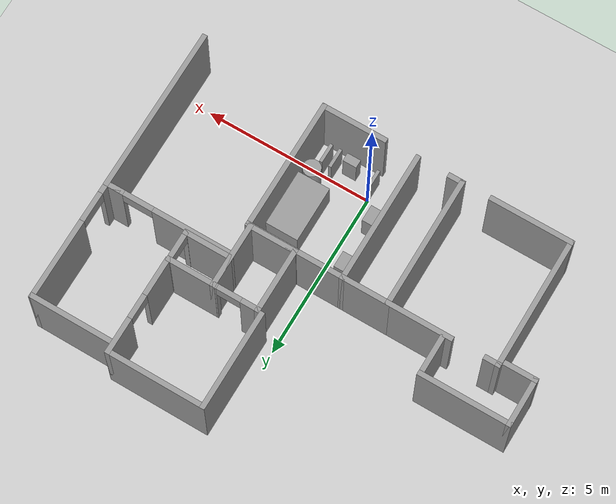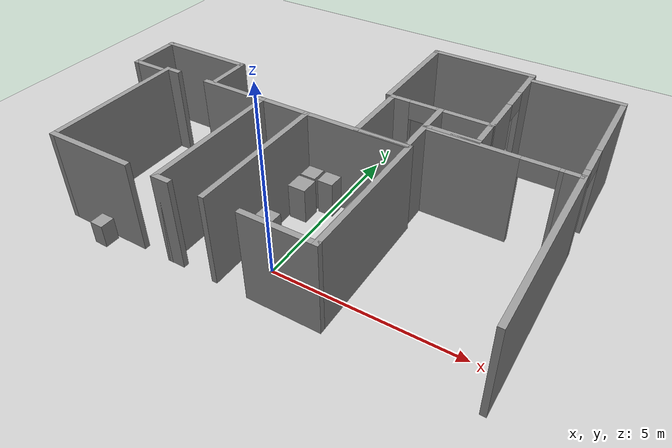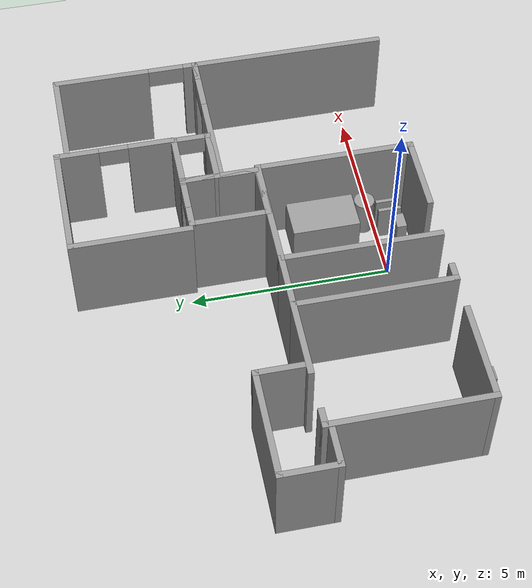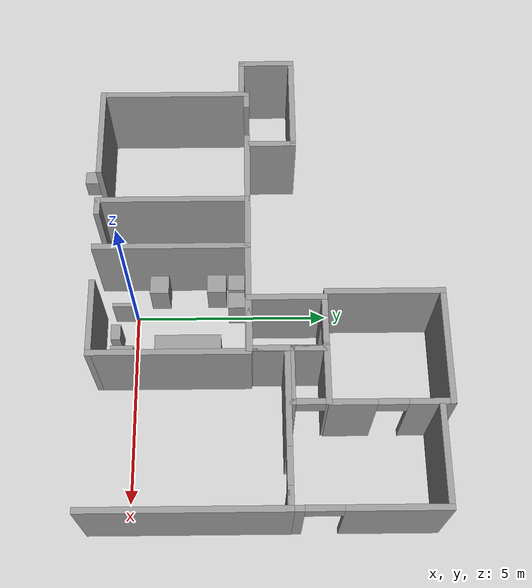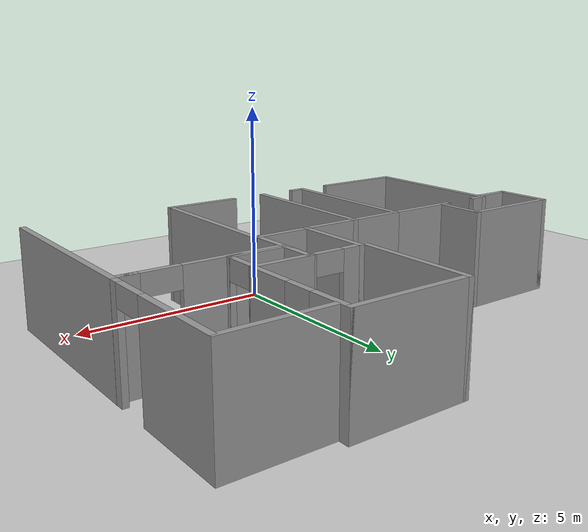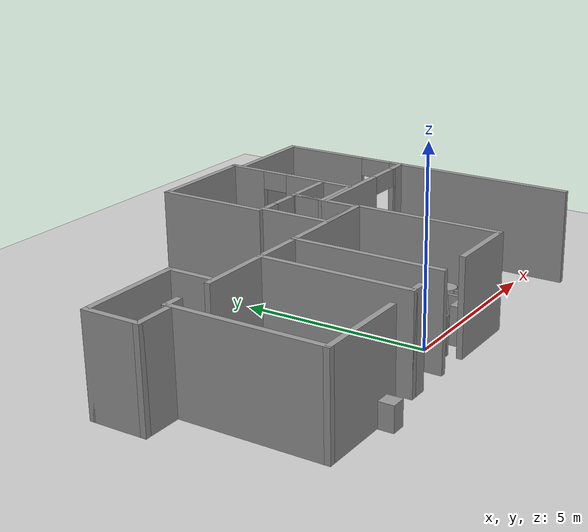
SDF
<sdf version="1.6">
 <world name="default">
  <model name="ground_plane">
   <static>1</static>
   <link name="link">
    <collision name="collision">
     <geometry><plane><normal>0 0 1</normal><size>100 100</size></plane></geometry>
     <surface><friction><ode><mu>100</mu><mu2>50</mu2></ode></friction></surface>
    </collision>
    <visual name="visual">
     <cast_shadows>0</cast_shadows>
     <geometry><plane><normal>0 0 1</normal><size>100 100</size></plane></geometry>
     <material>
      <script><uri>file://media/materials/scripts/gazebo.material</uri><name>Gazebo/Grey</name></script>
     </material>
    </visual>
   </link>
  </model>
  <model name="cma_escritorio">
   <pose>-1.79682 1.02121 0 0 -0 0</pose>
   <link name="Wall_11">
    <collision name="Wall_11_Collision">
     <geometry><box><size>2 0.15 2.5</size></box></geometry>
     <pose>0 0 1.25 0 -0 0</pose>
    </collision>
    <visual name="Wall_11_Visual">
     <pose>0 0 1.25 0 -0 0</pose>
     <geometry><box><size>2 0.15 2.5</size></box></geometry>
     <material>
      <script><uri>file://media/materials/scripts/gazebo.material</uri><name>Gazebo/Grey</name></script>
      <ambient>1 1 1 1</ambient>
     </material>
    </visual>
    <pose>-1.4 1.93 0 0 -0 3.14159</pose>
   </link>
   <link name="Wall_2">
    <collision name="Wall_2_Collision">
     <geometry><box><size>4 0.15 2.5</size></box></geometry>
     <pose>0 0 1.25 0 -0 0</pose>
    </collision>
    <visual name="Wall_2_Visual">
     <pose>0 0 1.25 0 -0 0</pose>
     <geometry><box><size>4 0.15 2.5</size></box></geometry>
     <material>
      <script><uri>file://media/materials/scripts/gazebo.material</uri><name>Gazebo/Grey</name></script>
      <ambient>1 1 1 1</ambient>
     </material>
    </visual>
    <pose>0.875 0.005 0 0 -0 1.5708</pose>
   </link>
   <link name="Wall_25">
    <collision name="Wall_25_Collision">
     <geometry><box><size>2.5 0.15 2.5</size></box></geometry>
     <pose>0 0 1.25 0 -0 0</pose>
    </collision>
    <visual name="Wall_25_Visual">
     <pose>0 0 1.25 0 -0 0</pose>
     <geometry><box><size>2.5 0.15 2.5</size></box></geometry>
     <material>
      <script><uri>file://media/materials/scripts/gazebo.material</uri><name>Gazebo/Grey</name></script>
      <ambient>1 1 1 1</ambient>
     </material>
    </visual>
    <pose>-2.55 -1.93 0 0 -0 3.14159</pose>
   </link>
   <link name="Wall_26">
    <collision name="Wall_26_Collision">
     <geometry><box><size>4 0.15 2.5</size></box></geometry>
     <pose>0 0 1.25 0 -0 0</pose>
    </collision>
    <visual name="Wall_26_Visual">
     <pose>0 0 1.25 0 -0 0</pose>
     <geometry><box><size>4 0.15 2.5</size></box></geometry>
     <material>
      <script><uri>file://media/materials/scripts/gazebo.material</uri><name>Gazebo/Grey</name></script>
      <ambient>1 1 1 1</ambient>
     </material>
    </visual>
    <pose>-3.725 -0.005 0 0 -0 1.5708</pose>
   </link>
   <link name="Wall_27">
    <collision name="Wall_27_Collision">
     <geometry><box><size>0.5 0.15 2.5</size></box></geometry>
     <pose>0 0 1.25 0 -0 0</pose>
    </collision>
    <visual name="Wall_27_Visual">
     <pose>0 0 1.25 0 -0 0</pose>
     <geometry><box><size>0.5 0.15 2.5</size></box></geometry>
     <material>
      <script><uri>file://media/materials/scripts/gazebo.material</uri><name>Gazebo/Grey</name></script>
      <ambient>1 1 1 1</ambient>
     </material>
    </visual>
    <pose>-3.55 1.92 0 0 -0 0</pose>
   </link>
   <link name="Wall_3">
    <collision name="Wall_3_Collision">
     <geometry><box><size>3 0.15 2.5</size></box></geometry>
     <pose>0 0 1.25 0 -0 0</pose>
    </collision>
    <visual name="Wall_3_Visual">
     <pose>0 0 1.25 0 -0 0</pose>
     <geometry><box><size>3 0.15 2.5</size></box></geometry>
     <material>
      <script><uri>file://media/materials/scripts/gazebo.material</uri><name>Gazebo/Grey</name></script>
      <ambient>1 1 1 1</ambient>
     </material>
    </visual>
    <pose>2.3 1.93 0 0 -0 0</pose>
   </link>
   <link name="Wall_4">
    <collision name="Wall_4_Collision">
     <geometry><box><size>4 0.15 2.5</size></box></geometry>
     <pose>0 0 1.25 0 -0 0</pose>
    </collision>
    <visual name="Wall_4_Visual">
     <pose>0 0 1.25 0 -0 0</pose>
     <geometry><box><size>4 0.15 2.5</size></box></geometry>
     <material>
      <script><uri>file://media/materials/scripts/gazebo.material</uri><name>Gazebo/Grey</name></script>
      <ambient>1 1 1 1</ambient>
     </material>
    </visual>
    <pose>3.725 0.005 0 0 0 -1.5708</pose>
   </link>
   <link name="Wall_5">
    <collision name="Wall_5_Collision">
     <geometry><box><size>2 0.15 2.5</size></box></geometry>
     <pose>0 0 1.25 0 -0 0</pose>
    </collision>
    <visual name="Wall_5_Visual">
     <pose>0 0 1.25 0 -0 0</pose>
     <geometry><box><size>2 0.15 2.5</size></box></geometry>
     <material>
      <script><uri>file://media/materials/scripts/gazebo.material</uri><name>Gazebo/Grey</name></script>
      <ambient>1 1 1 1</ambient>
     </material>
    </visual>
    <pose>2.8 -1.92 0 0 -0 3.14159</pose>
   </link>
   <link name="Wall_7">
    <collision name="Wall_7_Collision">
     <geometry><box><size>1.5 0.15 2.5</size></box></geometry>
     <pose>0 0 1.25 0 -0 0</pose>
    </collision>
    <visual name="Wall_7_Visual">
     <pose>0 0 1.25 0 -0 0</pose>
     <geometry><box><size>1.5 0.15 2.5</size></box></geometry>
     <material>
      <script><uri>file://media/materials/scripts/gazebo.material</uri><name>Gazebo/Grey</name></script>
      <ambient>1 1 1 1</ambient>
     </material>
    </visual>
    <pose>0.2 1.93 0 0 -0 3.14159</pose>
   </link>
   <link name="Wall_8">
    <collision name="Wall_8_Collision">
     <geometry><box><size>4 0.15 2.5</size></box></geometry>
     <pose>0 0 1.25 0 -0 0</pose>
    </collision>
    <visual name="Wall_8_Visual">
     <pose>0 0 1.25 0 -0 0</pose>
     <geometry><box><size>4 0.15 2.5</size></box></geometry>
     <material>
      <script><uri>file://media/materials/scripts/gazebo.material</uri><name>Gazebo/Grey</name></script>
      <ambient>1 1 1 1</ambient>
     </material>
    </visual>
    <pose>-0.475 0.005 0 0 0 -1.5708</pose>
   </link>
   <link name="Wall_9">
    <collision name="Wall_9_Collision">
     <geometry><box><size>0.5 0.15 2.5</size></box></geometry>
     <pose>0 0 1.25 0 -0 0</pose>
    </collision>
    <visual name="Wall_9_Visual">
     <pose>0 0 1.25 0 -0 0</pose>
     <geometry><box><size>0.5 0.15 2.5</size></box></geometry>
     <material>
      <script><uri>file://media/materials/scripts/gazebo.material</uri><name>Gazebo/Grey</name></script>
      <ambient>1 1 1 1</ambient>
     </material>
    </visual>
    <pose>-0.3 -1.92 0 0 -0 0</pose>
   </link>
   <static>1</static>
  </model>
  <model name="cma_banheiro">
   <pose>-5.22928 3.4871 0 0 -0 0</pose>
   <link name="Wall_0">
    <collision name="Wall_0_Collision">
     <geometry><box><size>1 0.15 2.5</size></box></geometry>
     <pose>0 0 1.25 0 -0 0</pose>
    </collision>
    <visual name="Wall_0_Visual">
     <pose>0 0 1.25 0 -0 0</pose>
     <geometry><box><size>1 0.15 2.5</size></box></geometry>
     <material>
      <script><uri>file://media/materials/scripts/gazebo.material</uri><name>Gazebo/Grey</name></script>
      <ambient>1 1 1 1</ambient>
     </material>
    </visual>
    <pose>-0.875 -0.675 0 0 -0 3.14159</pose>
   </link>
   <link name="Wall_1">
    <collision name="Wall_1_Collision">
     <geometry><box><size>1.5 0.15 2.5</size></box></geometry>
     <pose>0 0 1.25 0 -0 0</pose>
    </collision>
    <visual name="Wall_1_Visual">
     <pose>0 0 1.25 0 -0 0</pose>
     <geometry><box><size>1.5 0.15 2.5</size></box></geometry>
     <material>
      <script><uri>file://media/materials/scripts/gazebo.material</uri><name>Gazebo/Grey</name></script>
      <ambient>1 1 1 1</ambient>
     </material>
    </visual>
    <pose>-1.3 0 0 0 -0 1.5708</pose>
   </link>
   <link name="Wall_2">
    <collision name="Wall_2_Collision">
     <geometry><box><size>2.75 0.15 2.5</size></box></geometry>
     <pose>0 0 1.25 0 -0 0</pose>
    </collision>
    <visual name="Wall_2_Visual">
     <pose>0 0 1.25 0 -0 0</pose>
     <geometry><box><size>2.75 0.15 2.5</size></box></geometry>
     <material>
      <script><uri>file://media/materials/scripts/gazebo.material</uri><name>Gazebo/Grey</name></script>
      <ambient>1 1 1 1</ambient>
     </material>
    </visual>
    <pose>0 0.675 0 0 -0 0</pose>
   </link>
   <link name="Wall_4">
    <collision name="Wall_4_Collision">
     <geometry><box><size>1.25 0.15 2.5</size></box></geometry>
     <pose>0 0 1.25 0 -0 0</pose>
    </collision>
    <visual name="Wall_4_Visual">
     <pose>0 0 1.25 0 -0 0</pose>
     <geometry><box><size>1.25 0.15 2.5</size></box></geometry>
     <material>
      <script><uri>file://media/materials/scripts/gazebo.material</uri><name>Gazebo/Grey</name></script>
      <ambient>1 1 1 1</ambient>
     </material>
    </visual>
    <pose>1.3 0.125 0 0 0 -1.5708</pose>
   </link>
   <static>1</static>
  </model>
  <model name="cma_L5">
   <pose>3.77502 1.45512 0 0 -0 0</pose>
   <link name="Wall_0">
    <collision name="Wall_0_Collision">
     <geometry><box><size>1 0.15 2.5</size></box></geometry>
     <pose>0 0 1.25 0 -0 0</pose>
    </collision>
    <visual name="Wall_0_Visual">
     <pose>0 0 1.25 0 -0 0</pose>
     <geometry><box><size>1 0.15 2.5</size></box></geometry>
     <material>
      <script><uri>file://media/materials/scripts/gazebo.material</uri><name>Gazebo/Grey</name></script>
      <ambient>1 1 1 1</ambient>
     </material>
    </visual>
    <pose>-1.925 2 0 0 -0 1.5708</pose>
   </link>
   <link name="Wall_1">
    <pose>0 2.425 0 0 -0 0</pose>
    <visual name="Wall_1_Visual_0">
     <pose>-0.7525 0 1.25 0 -0 0</pose>
     <geometry><box><size>2.495 0.15 2.5</size></box></geometry>
     <material>
      <script><uri>file://media/materials/scripts/gazebo.material</uri><name>Gazebo/Grey</name></script>
      <ambient>1 1 1 1</ambient>
     </material>
    </visual>
    <collision name="Wall_1_Collision_0">
     <geometry><box><size>2.495 0.15 2.5</size></box></geometry>
     <pose>-0.7525 0 1.25 0 -0 0</pose>
    </collision>
    <visual name="Wall_1_Visual_1">
     <pose>1.6975 0 1.25 0 -0 0</pose>
     <geometry><box><size>0.605 0.15 2.5</size></box></geometry>
     <material>
      <script><uri>file://media/materials/scripts/gazebo.material</uri><name>Gazebo/Grey</name></script>
      <ambient>1 1 1 1</ambient>
     </material>
    </visual>
    <collision name="Wall_1_Collision_1">
     <geometry><box><size>0.605 0.15 2.5</size></box></geometry>
     <pose>1.6975 0 1.25 0 -0 0</pose>
    </collision>
    <visual name="Wall_1_Visual_2">
     <pose>0.945 0 2.25 0 -0 0</pose>
     <geometry><box><size>0.9 0.15 0.5</size></box></geometry>
     <material>
      <script><uri>file://media/materials/scripts/gazebo.material</uri><name>Gazebo/Grey</name></script>
      <ambient>1 1 1 1</ambient>
     </material>
    </visual>
    <collision name="Wall_1_Collision_2">
     <geometry><box><size>0.9 0.15 0.5</size></box></geometry>
     <pose>0.945 0 2.25 0 -0 0</pose>
    </collision>
   </link>
   <link name="Wall_3">
    <collision name="Wall_3_Collision">
     <geometry><box><size>5 0.15 2.5</size></box></geometry>
     <pose>0 0 1.25 0 -0 0</pose>
    </collision>
    <visual name="Wall_3_Visual">
     <pose>0 0 1.25 0 -0 0</pose>
     <geometry><box><size>5 0.15 2.5</size></box></geometry>
     <material>
      <script><uri>file://media/materials/scripts/gazebo.material</uri><name>Gazebo/Grey</name></script>
      <ambient>1 1 1 1</ambient>
     </material>
    </visual>
    <pose>1.925 0 0 0 0 -1.5708</pose>
   </link>
   <static>1</static>
  </model>
  <model name="cma_dispensa">
   <pose>2.52584 4.40119 0 0 -0 0</pose>
   <link name="Wall_5">
    <collision name="Wall_5_Collision">
     <geometry><box><size>1 0.15 2.5</size></box></geometry>
     <pose>0 0 1.25 0 -0 0</pose>
    </collision>
    <visual name="Wall_5_Visual">
     <pose>0 0 1.25 0 -0 0</pose>
     <geometry><box><size>1 0.15 2.5</size></box></geometry>
     <material>
      <script><uri>file://media/materials/scripts/gazebo.material</uri><name>Gazebo/Grey</name></script>
      <ambient>1 1 1 1</ambient>
     </material>
    </visual>
    <pose>-0.675 0 0 0 -0 1.5708</pose>
   </link>
   <link name="Wall_6">
    <collision name="Wall_6_Collision">
     <geometry><box><size>1.5 0.15 2.5</size></box></geometry>
     <pose>0 0 1.25 0 -0 0</pose>
    </collision>
    <visual name="Wall_6_Visual">
     <pose>0 0 1.25 0 -0 0</pose>
     <geometry><box><size>1.5 0.15 2.5</size></box></geometry>
     <material>
      <script><uri>file://media/materials/scripts/gazebo.material</uri><name>Gazebo/Grey</name></script>
      <ambient>1 1 1 1</ambient>
     </material>
    </visual>
    <pose>0 0.425 0 0 -0 0</pose>
   </link>
   <link name="Wall_7">
    <pose>0.675 0 0 0 0 -1.5708</pose>
    <visual name="Wall_7_Visual_0">
     <pose>-0.4275 0 1.25 0 -0 0</pose>
     <geometry><box><size>0.145 0.15 2.5</size></box></geometry>
     <material>
      <script><uri>file://media/materials/scripts/gazebo.material</uri><name>Gazebo/Grey</name></script>
      <ambient>1 1 1 1</ambient>
     </material>
    </visual>
    <collision name="Wall_7_Collision_0">
     <geometry><box><size>0.145 0.15 2.5</size></box></geometry>
     <pose>-0.4275 0 1.25 0 -0 0</pose>
    </collision>
    <visual name="Wall_7_Visual_1">
     <pose>0.4225 0 1.25 0 -0 0</pose>
     <geometry><box><size>0.155 0.15 2.5</size></box></geometry>
     <material>
      <script><uri>file://media/materials/scripts/gazebo.material</uri><name>Gazebo/Grey</name></script>
      <ambient>1 1 1 1</ambient>
     </material>
    </visual>
    <collision name="Wall_7_Collision_1">
     <geometry><box><size>0.155 0.15 2.5</size></box></geometry>
     <pose>0.4225 0 1.25 0 -0 0</pose>
    </collision>
    <visual name="Wall_7_Visual_2">
     <pose>-0.005 0 2.25 0 -0 0</pose>
     <geometry><box><size>0.7 0.15 0.5</size></box></geometry>
     <material>
      <script><uri>file://media/materials/scripts/gazebo.material</uri><name>Gazebo/Grey</name></script>
      <ambient>1 1 1 1</ambient>
     </material>
    </visual>
    <collision name="Wall_7_Collision_2">
     <geometry><box><size>0.7 0.15 0.5</size></box></geometry>
     <pose>-0.005 0 2.25 0 -0 0</pose>
    </collision>
   </link>
   <link name="Wall_8">
    <collision name="Wall_8_Collision">
     <geometry><box><size>1.5 0.15 2.5</size></box></geometry>
     <pose>0 0 1.25 0 -0 0</pose>
    </collision>
    <visual name="Wall_8_Visual">
     <pose>0 0 1.25 0 -0 0</pose>
     <geometry><box><size>1.5 0.15 2.5</size></box></geometry>
     <material>
      <script><uri>file://media/materials/scripts/gazebo.material</uri><name>Gazebo/Grey</name></script>
      <ambient>1 1 1 1</ambient>
     </material>
    </visual>
    <pose>0 -0.425 0 0 -0 3.14159</pose>
   </link>
   <static>1</static>
  </model>
  <model name="cma_banheiro_e">
   <pose>1.18358 3.89879 0 0 -0 0</pose>
   <link name="Wall_10">
    <collision name="Wall_10_Collision">
     <geometry><box><size>1.5 0.15 2.5</size></box></geometry>
     <pose>0 0 1.25 0 -0 0</pose>
    </collision>
    <visual name="Wall_10_Visual">
     <pose>0 0 1.25 0 -0 0</pose>
     <geometry><box><size>1.5 0.15 2.5</size></box></geometry>
     <material>
      <script><uri>file://media/materials/scripts/gazebo.material</uri><name>Gazebo/Grey</name></script>
      <ambient>1 1 1 1</ambient>
     </material>
    </visual>
    <pose>0 -0.925 0 0 -0 3.14159</pose>
   </link>
   <link name="Wall_11">
    <collision name="Wall_11_Collision">
     <geometry><box><size>2 0.15 2.5</size></box></geometry>
     <pose>0 0 1.25 0 -0 0</pose>
    </collision>
    <visual name="Wall_11_Visual">
     <pose>0 0 1.25 0 -0 0</pose>
     <geometry><box><size>2 0.15 2.5</size></box></geometry>
     <material>
      <script><uri>file://media/materials/scripts/gazebo.material</uri><name>Gazebo/Grey</name></script>
      <ambient>1 1 1 1</ambient>
     </material>
    </visual>
    <pose>-0.675 0 0 0 -0 1.5708</pose>
   </link>
   <link name="Wall_12">
    <pose>0 0.925 0 0 -0 0</pose>
    <visual name="Wall_12_Visual_0">
     <pose>-0.4625 0 1.25 0 -0 0</pose>
     <geometry><box><size>0.575 0.15 2.5</size></box></geometry>
     <material>
      <script><uri>file://media/materials/scripts/gazebo.material</uri><name>Gazebo/Grey</name></script>
      <ambient>1 1 1 1</ambient>
     </material>
    </visual>
    <collision name="Wall_12_Collision_0">
     <geometry><box><size>0.575 0.15 2.5</size></box></geometry>
     <pose>-0.4625 0 1.25 0 -0 0</pose>
    </collision>
    <visual name="Wall_12_Visual_1">
     <pose>0.6475 0 1.25 0 -0 0</pose>
     <geometry><box><size>0.205 0.15 2.5</size></box></geometry>
     <material>
      <script><uri>file://media/materials/scripts/gazebo.material</uri><name>Gazebo/Grey</name></script>
      <ambient>1 1 1 1</ambient>
     </material>
    </visual>
    <collision name="Wall_12_Collision_1">
     <geometry><box><size>0.205 0.15 2.5</size></box></geometry>
     <pose>0.6475 0 1.25 0 -0 0</pose>
    </collision>
    <visual name="Wall_12_Visual_2">
     <pose>0.185 0 2.25 0 -0 0</pose>
     <geometry><box><size>0.72 0.15 0.5</size></box></geometry>
     <material>
      <script><uri>file://media/materials/scripts/gazebo.material</uri><name>Gazebo/Grey</name></script>
      <ambient>1 1 1 1</ambient>
     </material>
    </visual>
    <collision name="Wall_12_Collision_2">
     <geometry><box><size>0.72 0.15 0.5</size></box></geometry>
     <pose>0.185 0 2.25 0 -0 0</pose>
    </collision>
   </link>
   <link name="Wall_13">
    <collision name="Wall_13_Collision">
     <geometry><box><size>2 0.15 2.5</size></box></geometry>
     <pose>0 0 1.25 0 -0 0</pose>
    </collision>
    <visual name="Wall_13_Visual">
     <pose>0 0 1.25 0 -0 0</pose>
     <geometry><box><size>2 0.15 2.5</size></box></geometry>
     <material>
      <script><uri>file://media/materials/scripts/gazebo.material</uri><name>Gazebo/Grey</name></script>
      <ambient>1 1 1 1</ambient>
     </material>
    </visual>
    <pose>0.675 0 0 0 0 -1.5708</pose>
   </link>
   <static>1</static>
  </model>
  <model name="cma_qe">
   <pose>1.79561 6.31228 0 0 -0 0</pose>
   <link name="Wall_15">
    <collision name="Wall_15_Collision">
     <geometry><box><size>3 0.15 2.5</size></box></geometry>
     <pose>0 0 1.25 0 -0 0</pose>
    </collision>
    <visual name="Wall_15_Visual">
     <pose>0 0 1.25 0 -0 0</pose>
     <geometry><box><size>3 0.15 2.5</size></box></geometry>
     <material>
      <script><uri>file://media/materials/scripts/gazebo.material</uri><name>Gazebo/Grey</name></script>
      <ambient>1 1 1 1</ambient>
     </material>
    </visual>
    <pose>-1.425 0 0 0 -0 1.5708</pose>
   </link>
   <link name="Wall_16">
    <collision name="Wall_16_Collision">
     <geometry><box><size>3 0.15 2.5</size></box></geometry>
     <pose>0 0 1.25 0 -0 0</pose>
    </collision>
    <visual name="Wall_16_Visual">
     <pose>0 0 1.25 0 -0 0</pose>
     <geometry><box><size>3 0.15 2.5</size></box></geometry>
     <material>
      <script><uri>file://media/materials/scripts/gazebo.material</uri><name>Gazebo/Grey</name></script>
      <ambient>1 1 1 1</ambient>
     </material>
    </visual>
    <pose>0 1.425 0 0 -0 0</pose>
   </link>
   <link name="Wall_17">
    <pose>1.425 0 0 0 0 -1.5708</pose>
    <visual name="Wall_17_Visual_0">
     <pose>-0.945 0 1.25 0 -0 0</pose>
     <geometry><box><size>1.11 0.15 2.5</size></box></geometry>
     <material>
      <script><uri>file://media/materials/scripts/gazebo.material</uri><name>Gazebo/Grey</name></script>
      <ambient>1 1 1 1</ambient>
     </material>
    </visual>
    <collision name="Wall_17_Collision_0">
     <geometry><box><size>1.11 0.15 2.5</size></box></geometry>
     <pose>-0.945 0 1.25 0 -0 0</pose>
    </collision>
    <visual name="Wall_17_Visual_1">
     <pose>0.92 0 1.25 0 -0 0</pose>
     <geometry><box><size>1.16 0.15 2.5</size></box></geometry>
     <material>
      <script><uri>file://media/materials/scripts/gazebo.material</uri><name>Gazebo/Grey</name></script>
      <ambient>1 1 1 1</ambient>
     </material>
    </visual>
    <collision name="Wall_17_Collision_1">
     <geometry><box><size>1.16 0.15 2.5</size></box></geometry>
     <pose>0.92 0 1.25 0 -0 0</pose>
    </collision>
    <visual name="Wall_17_Visual_2">
     <pose>-0.025 0 2.25 0 -0 0</pose>
     <geometry><box><size>0.73 0.15 0.5</size></box></geometry>
     <material>
      <script><uri>file://media/materials/scripts/gazebo.material</uri><name>Gazebo/Grey</name></script>
      <ambient>1 1 1 1</ambient>
     </material>
    </visual>
    <collision name="Wall_17_Collision_2">
     <geometry><box><size>0.73 0.15 0.5</size></box></geometry>
     <pose>-0.025 0 2.25 0 -0 0</pose>
    </collision>
   </link>
   <static>1</static>
  </model>
  <model name="cma_area2">
   <pose>4.52275 5.67862 0 0 -0 0</pose>
   <link name="Wall_23">
    <collision name="Wall_23_Collision">
     <geometry><box><size>2.5 0.15 2.5</size></box></geometry>
     <pose>0 0 1.25 0 -0 0</pose>
    </collision>
    <visual name="Wall_23_Visual">
     <pose>0 0 1.25 0 -0 0</pose>
     <geometry><box><size>2.5 0.15 2.5</size></box></geometry>
     <material>
      <script><uri>file://media/materials/scripts/gazebo.material</uri><name>Gazebo/Grey</name></script>
      <ambient>1 1 1 1</ambient>
     </material>
    </visual>
    <pose>0 1.8 0 0 -0 0</pose>
   </link>
   <link name="Wall_24">
    <pose>1.175 0 0 0 0 -1.5708</pose>
    <visual name="Wall_24_Visual_0">
     <pose>-0.6425 0 1.25 0 -0 0</pose>
     <geometry><box><size>2.465 0.15 2.5</size></box></geometry>
     <material>
      <script><uri>file://media/materials/scripts/gazebo.material</uri><name>Gazebo/Grey</name></script>
      <ambient>1 1 1 1</ambient>
     </material>
    </visual>
    <collision name="Wall_24_Collision_0">
     <geometry><box><size>2.465 0.15 2.5</size></box></geometry>
     <pose>-0.6425 0 1.25 0 -0 0</pose>
    </collision>
    <visual name="Wall_24_Visual_1">
     <pose>1.6825 0 1.25 0 -0 0</pose>
     <geometry><box><size>0.385 0.15 2.5</size></box></geometry>
     <material>
      <script><uri>file://media/materials/scripts/gazebo.material</uri><name>Gazebo/Grey</name></script>
      <ambient>1 1 1 1</ambient>
     </material>
    </visual>
    <collision name="Wall_24_Collision_1">
     <geometry><box><size>0.385 0.15 2.5</size></box></geometry>
     <pose>1.6825 0 1.25 0 -0 0</pose>
    </collision>
    <visual name="Wall_24_Visual_2">
     <pose>1.04 0 2.25 0 -0 0</pose>
     <geometry><box><size>0.9 0.15 0.5</size></box></geometry>
     <material>
      <script><uri>file://media/materials/scripts/gazebo.material</uri><name>Gazebo/Grey</name></script>
      <ambient>1 1 1 1</ambient>
     </material>
    </visual>
    <collision name="Wall_24_Collision_2">
     <geometry><box><size>0.9 0.15 0.5</size></box></geometry>
     <pose>1.04 0 2.25 0 -0 0</pose>
    </collision>
   </link>
   <link name="Wall_25">
    <collision name="Wall_25_Collision">
     <geometry><box><size>0.5 0.15 2.5</size></box></geometry>
     <pose>0 0 1.25 0 -0 0</pose>
    </collision>
    <visual name="Wall_25_Visual">
     <pose>0 0 1.25 0 -0 0</pose>
     <geometry><box><size>0.5 0.15 2.5</size></box></geometry>
     <material>
      <script><uri>file://media/materials/scripts/gazebo.material</uri><name>Gazebo/Grey</name></script>
      <ambient>1 1 1 1</ambient>
     </material>
    </visual>
    <pose>1 -1.8 0 0 -0 3.14159</pose>
   </link>
   <static>1</static>
  </model>
  <model name="cma_mesa_pc">
   <link name="link_0">
    <pose>-1.36533 -0.599866 0 0 -0 0</pose>
    <inertial>
     <mass>0.0551539</mass>
     <inertia>
      <ixx>0.00617776</ixx>
      <ixy>0</ixy>
      <ixz>0</ixz>
      <iyy>0.0046368</iyy>
      <iyz>0</iyz>
      <izz>0.00162222</izz>
     </inertia>
    </inertial>
    <visual name="visual">
     <geometry><box><size>0.094008 0.586626 1</size></box></geometry>
     <material>
      <lighting>1</lighting>
      <script><uri>file://media/materials/scripts/gazebo.material</uri><name>Gazebo/Grey</name></script>
      <ambient>0.3 0.3 0.3 1</ambient>
      <diffuse>0.7 0.7 0.7 1</diffuse>
      <specular>0.01 0.01 0.01 1</specular>
      <emissive>0 0 0 1</emissive>
     </material>
    </visual>
    <collision name="collision">
     <geometry><box><size>0.094008 0.586626 1</size></box></geometry>
     <surface>
      <friction>
       <ode><mu>1</mu><mu2>1</mu2><fdir1>0 0 0</fdir1><slip1>0</slip1><slip2>0</slip2></ode>
       <torsional>
        <coefficient>1</coefficient>
        <patch_radius>0</patch_radius>
        <surface_radius>0</surface_radius>
        <use_patch_radius>1</use_patch_radius>
        <ode><slip>0</slip></ode>
       </torsional>
      </friction>
      <bounce><restitution_coefficient>0</restitution_coefficient><threshold>1e+06</threshold></bounce>
      <contact>
       <collide_without_contact>0</collide_without_contact>
       <collide_without_contact_bitmask>1</collide_without_contact_bitmask>
       <collide_bitmask>1</collide_bitmask>
       <ode>
        <soft_cfm>0</soft_cfm>
        <soft_erp>0.2</soft_erp>
        <kp>1e+13</kp>
        <kd>1</kd>
        <max_vel>0.01</max_vel>
        <min_depth>0</min_depth>
       </ode>
       <bullet>
        <split_impulse>1</split_impulse>
        <split_impulse_penetration_threshold>-0.01</split_impulse_penetration_threshold>
        <soft_cfm>0</soft_cfm>
        <soft_erp>0.2</soft_erp>
        <kp>1e+13</kp>
        <kd>1</kd>
       </bullet>
      </contact>
     </surface>
    </collision>
   </link>
   <link name="link_0_clone">
    <pose>-0.180053 -0.603181 0 0 -0 0</pose>
    <inertial>
     <mass>0.0551539</mass>
     <inertia>
      <ixx>0.00617776</ixx>
      <ixy>0</ixy>
      <ixz>0</ixz>
      <iyy>0.0046368</iyy>
      <iyz>0</iyz>
      <izz>0.00162222</izz>
     </inertia>
    </inertial>
    <visual name="visual">
     <geometry><box><size>0.094008 0.586626 1</size></box></geometry>
     <material>
      <lighting>1</lighting>
      <script><uri>file://media/materials/scripts/gazebo.material</uri><name>Gazebo/Grey</name></script>
      <ambient>0.3 0.3 0.3 1</ambient>
      <diffuse>0.7 0.7 0.7 1</diffuse>
      <specular>0.01 0.01 0.01 1</specular>
      <emissive>0 0 0 1</emissive>
      <shader type="pixel"/>
     </material>
    </visual>
    <collision name="collision">
     <geometry><box><size>0.094008 0.586626 1</size></box></geometry>
     <surface>
      <friction>
       <ode><mu>1</mu><mu2>1</mu2><fdir1>0 0 0</fdir1><slip1>0</slip1><slip2>0</slip2></ode>
       <torsional>
        <coefficient>1</coefficient>
        <patch_radius>0</patch_radius>
        <surface_radius>0</surface_radius>
        <use_patch_radius>1</use_patch_radius>
        <ode><slip>0</slip></ode>
       </torsional>
      </friction>
      <bounce><restitution_coefficient>0</restitution_coefficient><threshold>1e+06</threshold></bounce>
      <contact>
       <collide_without_contact>0</collide_without_contact>
       <collide_without_contact_bitmask>1</collide_without_contact_bitmask>
       <collide_bitmask>1</collide_bitmask>
       <ode>
        <soft_cfm>0</soft_cfm>
        <soft_erp>0.2</soft_erp>
        <kp>1e+13</kp>
        <kd>1</kd>
        <max_vel>0.01</max_vel>
        <min_depth>0</min_depth>
       </ode>
       <bullet>
        <split_impulse>1</split_impulse>
        <split_impulse_penetration_threshold>-0.01</split_impulse_penetration_threshold>
        <soft_cfm>0</soft_cfm>
        <soft_erp>0.2</soft_erp>
        <kp>1e+13</kp>
        <kd>1</kd>
       </bullet>
      </contact>
     </surface>
    </collision>
   </link>
   <link name="link_0_clone_clone">
    <pose>0.101736 -0.601852 0 0 -0 0</pose>
    <inertial>
     <mass>0.0551539</mass>
     <inertia>
      <ixx>0.00617776</ixx>
      <ixy>0</ixy>
      <ixz>0</ixz>
      <iyy>0.0046368</iyy>
      <iyz>0</iyz>
      <izz>0.00162222</izz>
     </inertia>
    </inertial>
    <visual name="visual">
     <geometry><box><size>0.094008 0.586626 1</size></box></geometry>
     <material>
      <lighting>1</lighting>
      <script><uri>file://media/materials/scripts/gazebo.material</uri><name>Gazebo/Grey</name></script>
      <ambient>0.3 0.3 0.3 1</ambient>
      <diffuse>0.7 0.7 0.7 1</diffuse>
      <specular>0.01 0.01 0.01 1</specular>
      <emissive>0 0 0 1</emissive>
      <shader type="pixel"/>
     </material>
    </visual>
    <collision name="collision">
     <geometry><box><size>0.094008 0.586626 1</size></box></geometry>
     <surface>
      <friction>
       <ode><mu>1</mu><mu2>1</mu2><fdir1>0 0 0</fdir1><slip1>0</slip1><slip2>0</slip2></ode>
       <torsional>
        <coefficient>1</coefficient>
        <patch_radius>0</patch_radius>
        <surface_radius>0</surface_radius>
        <use_patch_radius>1</use_patch_radius>
        <ode><slip>0</slip></ode>
       </torsional>
      </friction>
      <bounce><restitution_coefficient>0</restitution_coefficient><threshold>1e+06</threshold></bounce>
      <contact>
       <collide_without_contact>0</collide_without_contact>
       <collide_without_contact_bitmask>1</collide_without_contact_bitmask>
       <collide_bitmask>1</collide_bitmask>
       <ode>
        <soft_cfm>0</soft_cfm>
        <soft_erp>0.2</soft_erp>
        <kp>1e+13</kp>
        <kd>1</kd>
        <max_vel>0.01</max_vel>
        <min_depth>0</min_depth>
       </ode>
       <bullet>
        <split_impulse>1</split_impulse>
        <split_impulse_penetration_threshold>-0.01</split_impulse_penetration_threshold>
        <soft_cfm>0</soft_cfm>
        <soft_erp>0.2</soft_erp>
        <kp>1e+13</kp>
        <kd>1</kd>
       </bullet>
      </contact>
     </surface>
    </collision>
   </link>
   <static>0</static>
   <pose>1.38356 0.307951 0.500003 8e-06 0 -0.001637</pose>
  </model>
  <model name="cma_picador_0">
   <link name="link_2">
    <pose>-0.7258 -1.69104 0 0 -0 0</pose>
    <inertial>
     <mass>0.104732</mass>
     <inertia>
      <ixx>0.00927906</ixx>
      <ixy>0</ixy>
      <ixz>0</ixz>
      <iyy>0.010243</iyy>
      <iyz>0</iyz>
      <izz>0.00206672</izz>
     </inertia>
    </inertial>
    <visual name="visual">
     <geometry><box><size>0.416688 0.25134 1</size></box></geometry>
     <material>
      <lighting>1</lighting>
      <script><uri>file://media/materials/scripts/gazebo.material</uri><name>Gazebo/Grey</name></script>
      <ambient>0.3 0.3 0.3 1</ambient>
      <diffuse>0.7 0.7 0.7 1</diffuse>
      <specular>0.01 0.01 0.01 1</specular>
      <emissive>0 0 0 1</emissive>
     </material>
    </visual>
    <collision name="collision">
     <geometry><box><size>0.416688 0.25134 1</size></box></geometry>
     <surface>
      <friction>
       <ode><mu>1</mu><mu2>1</mu2><fdir1>0 0 0</fdir1><slip1>0</slip1><slip2>0</slip2></ode>
       <torsional>
        <coefficient>1</coefficient>
        <patch_radius>0</patch_radius>
        <surface_radius>0</surface_radius>
        <use_patch_radius>1</use_patch_radius>
        <ode><slip>0</slip></ode>
       </torsional>
      </friction>
      <bounce><restitution_coefficient>0</restitution_coefficient><threshold>1e+06</threshold></bounce>
      <contact>
       <collide_without_contact>0</collide_without_contact>
       <collide_without_contact_bitmask>1</collide_without_contact_bitmask>
       <collide_bitmask>1</collide_bitmask>
       <ode>
        <soft_cfm>0</soft_cfm>
        <soft_erp>0.2</soft_erp>
        <kp>1e+13</kp>
        <kd>1</kd>
        <max_vel>0.01</max_vel>
        <min_depth>0</min_depth>
       </ode>
       <bullet>
        <split_impulse>1</split_impulse>
        <split_impulse_penetration_threshold>-0.01</split_impulse_penetration_threshold>
        <soft_cfm>0</soft_cfm>
        <soft_erp>0.2</soft_erp>
        <kp>1e+13</kp>
        <kd>1</kd>
       </bullet>
      </contact>
     </surface>
    </collision>
   </link>
   <static>0</static>
   <pose>1.51164 1.22767 0.5 2e-06 4e-06 -0.000613</pose>
  </model>
  <model name="cma_cesto">
   <link name="link_1">
    <pose>-0.329659 -1.55494 0 0 -0 0</pose>
    <inertial>
     <mass>0.267897</mass>
     <inertia>
      <ixx>0.0268102</ixx>
      <ixy>0</ixy>
      <ixz>0</ixz>
      <iyy>0.0268102</iyy>
      <iyz>0</iyz>
      <izz>0.00897111</izz>
     </inertia>
    </inertial>
    <visual name="visual">
     <geometry><cylinder><radius>0.258792</radius><length>1</length></cylinder></geometry>
     <material>
      <lighting>1</lighting>
      <script><uri>file://media/materials/scripts/gazebo.material</uri><name>Gazebo/Grey</name></script>
      <ambient>0.3 0.3 0.3 1</ambient>
      <diffuse>0.7 0.7 0.7 1</diffuse>
      <specular>0.01 0.01 0.01 1</specular>
      <emissive>0 0 0 1</emissive>
     </material>
    </visual>
    <collision name="collision">
     <geometry><cylinder><radius>0.258792</radius><length>1</length></cylinder></geometry>
     <surface>
      <friction>
       <ode><mu>1</mu><mu2>1</mu2><fdir1>0 0 0</fdir1><slip1>0</slip1><slip2>0</slip2></ode>
       <torsional>
        <coefficient>1</coefficient>
        <patch_radius>0</patch_radius>
        <surface_radius>0</surface_radius>
        <use_patch_radius>1</use_patch_radius>
        <ode><slip>0</slip></ode>
       </torsional>
      </friction>
      <bounce><restitution_coefficient>0</restitution_coefficient><threshold>1e+06</threshold></bounce>
      <contact>
       <collide_without_contact>0</collide_without_contact>
       <collide_without_contact_bitmask>1</collide_without_contact_bitmask>
       <collide_bitmask>1</collide_bitmask>
       <ode>
        <soft_cfm>0</soft_cfm>
        <soft_erp>0.2</soft_erp>
        <kp>1e+13</kp>
        <kd>1</kd>
        <max_vel>0.01</max_vel>
        <min_depth>0</min_depth>
       </ode>
       <bullet>
        <split_impulse>1</split_impulse>
        <split_impulse_penetration_threshold>-0.01</split_impulse_penetration_threshold>
        <soft_cfm>0</soft_cfm>
        <soft_erp>0.2</soft_erp>
        <kp>1e+13</kp>
        <kd>1</kd>
       </bullet>
      </contact>
     </surface>
    </collision>
   </link>
   <static>0</static>
   <pose>1.94445 1.82075 0.499998 0 0 -0.013203</pose>
  </model>
  <model name="cma_sofa_2_lugares">
   <link name="link_0">
    <pose>-0.034013 -0.039828 0 0 -0 0</pose>
    <inertial>
     <mass>1.66071</mass>
     <inertia>
      <ixx>0.538183</ixx>
      <ixy>0</ixy>
      <ixz>0</ixz>
      <iyy>0.270519</iyy>
      <iyz>0</iyz>
      <izz>0.531915</izz>
     </inertia>
    </inertial>
    <visual name="visual">
     <geometry><box><size>0.977147 1.69968 1</size></box></geometry>
     <material>
      <lighting>1</lighting>
      <script><uri>file://media/materials/scripts/gazebo.material</uri><name>Gazebo/Grey</name></script>
      <ambient>0.3 0.3 0.3 1</ambient>
      <diffuse>0.7 0.7 0.7 1</diffuse>
      <specular>0.01 0.01 0.01 1</specular>
      <emissive>0 0 0 1</emissive>
     </material>
    </visual>
    <collision name="collision">
     <geometry><box><size>0.977147 1.69968 1</size></box></geometry>
     <surface>
      <friction>
       <ode><mu>1</mu><mu2>1</mu2><fdir1>0 0 0</fdir1><slip1>0</slip1><slip2>0</slip2></ode>
       <torsional>
        <coefficient>1</coefficient>
        <patch_radius>0</patch_radius>
        <surface_radius>0</surface_radius>
        <use_patch_radius>1</use_patch_radius>
        <ode><slip>0</slip></ode>
       </torsional>
      </friction>
      <bounce><restitution_coefficient>0</restitution_coefficient><threshold>1e+06</threshold></bounce>
      <contact>
       <collide_without_contact>0</collide_without_contact>
       <collide_without_contact_bitmask>1</collide_without_contact_bitmask>
       <collide_bitmask>1</collide_bitmask>
       <ode>
        <soft_cfm>0</soft_cfm>
        <soft_erp>0.2</soft_erp>
        <kp>1e+13</kp>
        <kd>1</kd>
        <max_vel>0.01</max_vel>
        <min_depth>0</min_depth>
       </ode>
       <bullet>
        <split_impulse>1</split_impulse>
        <split_impulse_penetration_threshold>-0.01</split_impulse_penetration_threshold>
        <soft_cfm>0</soft_cfm>
        <soft_erp>0.2</soft_erp>
        <kp>1e+13</kp>
        <kd>1</kd>
       </bullet>
      </contact>
     </surface>
    </collision>
   </link>
   <static>0</static>
   <pose>1.39816 1.43303 0.499999 -0 -2e-06 0.000515</pose>
  </model>
  <model name="cma_gaveteiro_pequeno">
   <link name="link_0">
    <pose>0.256174 1.25055 0.5 0 -0 0</pose>
    <inertial>
     <mass>0.187186</mass>
     <inertia>
      <ixx>0.01851</ixx>
      <ixy>0</ixy>
      <ixz>0</ixz>
      <iyy>0.0185276</iyy>
      <iyz>0</iyz>
      <izz>0.00583981</izz>
     </inertia>
    </inertial>
    <visual name="visual">
     <geometry><box><size>0.433317 0.432002 1</size></box></geometry>
     <material>
      <lighting>1</lighting>
      <script><uri>file://media/materials/scripts/gazebo.material</uri><name>Gazebo/Grey</name></script>
      <ambient>0.3 0.3 0.3 1</ambient>
      <diffuse>0.7 0.7 0.7 1</diffuse>
      <specular>0.01 0.01 0.01 1</specular>
      <emissive>0 0 0 1</emissive>
     </material>
    </visual>
    <collision name="collision">
     <geometry><box><size>0.433317 0.432002 1</size></box></geometry>
     <surface>
      <friction>
       <ode><mu>1</mu><mu2>1</mu2><fdir1>0 0 0</fdir1><slip1>0</slip1><slip2>0</slip2></ode>
       <torsional>
        <coefficient>1</coefficient>
        <patch_radius>0</patch_radius>
        <surface_radius>0</surface_radius>
        <use_patch_radius>1</use_patch_radius>
        <ode><slip>0</slip></ode>
       </torsional>
      </friction>
      <bounce><restitution_coefficient>0</restitution_coefficient><threshold>1e+06</threshold></bounce>
      <contact>
       <collide_without_contact>0</collide_without_contact>
       <collide_without_contact_bitmask>1</collide_without_contact_bitmask>
       <collide_bitmask>1</collide_bitmask>
       <ode>
        <soft_cfm>0</soft_cfm>
        <soft_erp>0.2</soft_erp>
        <kp>1e+13</kp>
        <kd>1</kd>
        <max_vel>0.01</max_vel>
        <min_depth>0</min_depth>
       </ode>
       <bullet>
        <split_impulse>1</split_impulse>
        <split_impulse_penetration_threshold>-0.01</split_impulse_penetration_threshold>
        <soft_cfm>0</soft_cfm>
        <soft_erp>0.2</soft_erp>
        <kp>1e+13</kp>
        <kd>1</kd>
       </bullet>
      </contact>
     </surface>
    </collision>
   </link>
   <static>0</static>
   <pose>-0.853064 1.39432 -4e-06 -0 -8e-06 6e-06</pose>
  </model>
  <model name="cma_gaveteiro_pequeno_0">
   <link name="link_0">
    <pose>0.256174 1.25055 0.5 0 -0 0</pose>
    <inertial>
     <mass>0.187186</mass>
     <inertia>
      <ixx>0.01851</ixx>
      <ixy>0</ixy>
      <ixz>0</ixz>
      <iyy>0.0185276</iyy>
      <iyz>0</iyz>
      <izz>0.00583981</izz>
     </inertia>
    </inertial>
    <visual name="visual">
     <geometry><box><size>0.433317 0.432002 1</size></box></geometry>
     <material>
      <lighting>1</lighting>
      <script><uri>file://media/materials/scripts/gazebo.material</uri><name>Gazebo/Grey</name></script>
      <ambient>0.3 0.3 0.3 1</ambient>
      <diffuse>0.7 0.7 0.7 1</diffuse>
      <specular>0.01 0.01 0.01 1</specular>
      <emissive>0 0 0 1</emissive>
     </material>
    </visual>
    <collision name="collision">
     <geometry><box><size>0.433317 0.432002 1</size></box></geometry>
     <surface>
      <friction>
       <ode><mu>1</mu><mu2>1</mu2><fdir1>0 0 0</fdir1><slip1>0</slip1><slip2>0</slip2></ode>
       <torsional>
        <coefficient>1</coefficient>
        <patch_radius>0</patch_radius>
        <surface_radius>0</surface_radius>
        <use_patch_radius>1</use_patch_radius>
        <ode><slip>0</slip></ode>
       </torsional>
      </friction>
      <bounce><restitution_coefficient>0</restitution_coefficient><threshold>1e+06</threshold></bounce>
      <contact>
       <collide_without_contact>0</collide_without_contact>
       <collide_without_contact_bitmask>1</collide_without_contact_bitmask>
       <collide_bitmask>1</collide_bitmask>
       <ode>
        <soft_cfm>0</soft_cfm>
        <soft_erp>0.2</soft_erp>
        <kp>1e+13</kp>
        <kd>1</kd>
        <max_vel>0.01</max_vel>
        <min_depth>0</min_depth>
       </ode>
       <bullet>
        <split_impulse>1</split_impulse>
        <split_impulse_penetration_threshold>-0.01</split_impulse_penetration_threshold>
        <soft_cfm>0</soft_cfm>
        <soft_erp>0.2</soft_erp>
        <kp>1e+13</kp>
        <kd>1</kd>
       </bullet>
      </contact>
     </surface>
    </collision>
   </link>
   <static>0</static>
   <pose>-0.341267 1.3951 4e-06 -3e-06 3e-06 -2.5e-05</pose>
  </model>
  <model name="cma_gaveteiro">
   <link name="link_0">
    <pose>-0 4e-06 0 0 -0 0</pose>
    <inertial>
     <mass>0.245086</mass>
     <inertia>
      <ixx>0.025418</ixx>
      <ixy>0</ixy>
      <ixz>0</ixz>
      <iyy>0.0254411</iyy>
      <iyz>0</iyz>
      <izz>0.0100113</izz>
     </inertia>
    </inertial>
    <visual name="visual">
     <geometry><box><size>0.495657 0.494491 1</size></box></geometry>
     <material>
      <lighting>1</lighting>
      <script><uri>file://media/materials/scripts/gazebo.material</uri><name>Gazebo/Grey</name></script>
      <ambient>0.3 0.3 0.3 1</ambient>
      <diffuse>0.7 0.7 0.7 1</diffuse>
      <specular>0.01 0.01 0.01 1</specular>
      <emissive>0 0 0 1</emissive>
     </material>
    </visual>
    <collision name="collision">
     <geometry><box><size>0.495657 0.494491 1</size></box></geometry>
     <surface>
      <friction>
       <ode><mu>1</mu><mu2>1</mu2><fdir1>0 0 0</fdir1><slip1>0</slip1><slip2>0</slip2></ode>
       <torsional>
        <coefficient>1</coefficient>
        <patch_radius>0</patch_radius>
        <surface_radius>0</surface_radius>
        <use_patch_radius>1</use_patch_radius>
        <ode><slip>0</slip></ode>
       </torsional>
      </friction>
      <bounce><restitution_coefficient>0</restitution_coefficient><threshold>1e+06</threshold></bounce>
      <contact>
       <collide_without_contact>0</collide_without_contact>
       <collide_without_contact_bitmask>1</collide_without_contact_bitmask>
       <collide_bitmask>1</collide_bitmask>
       <ode>
        <soft_cfm>0</soft_cfm>
        <soft_erp>0.2</soft_erp>
        <kp>1e+13</kp>
        <kd>1</kd>
        <max_vel>0.01</max_vel>
        <min_depth>0</min_depth>
       </ode>
       <bullet>
        <split_impulse>1</split_impulse>
        <split_impulse_penetration_threshold>-0.01</split_impulse_penetration_threshold>
        <soft_cfm>0</soft_cfm>
        <soft_erp>0.2</soft_erp>
        <kp>1e+13</kp>
        <kd>1</kd>
       </bullet>
      </contact>
     </surface>
    </collision>
   </link>
   <static>0</static>
   <pose>-0.569074 2.12229 0.499997 6e-06 5e-06 0.000225</pose>
  </model>
  <model name="cma_gaveteiro_0">
   <link name="link_0">
    <pose>-0 4e-06 0 0 -0 0</pose>
    <inertial>
     <mass>0.245086</mass>
     <inertia>
      <ixx>0.025418</ixx>
      <ixy>0</ixy>
      <ixz>0</ixz>
      <iyy>0.0254411</iyy>
      <iyz>0</iyz>
      <izz>0.0100113</izz>
     </inertia>
    </inertial>
    <visual name="visual">
     <geometry><box><size>0.495657 0.494491 1</size></box></geometry>
     <material>
      <lighting>1</lighting>
      <script><uri>file://media/materials/scripts/gazebo.material</uri><name>Gazebo/Grey</name></script>
      <ambient>0.3 0.3 0.3 1</ambient>
      <diffuse>0.7 0.7 0.7 1</diffuse>
      <specular>0.01 0.01 0.01 1</specular>
      <emissive>0 0 0 1</emissive>
     </material>
    </visual>
    <collision name="collision">
     <geometry><box><size>0.495657 0.494491 1</size></box></geometry>
     <surface>
      <friction>
       <ode><mu>1</mu><mu2>1</mu2><fdir1>0 0 0</fdir1><slip1>0</slip1><slip2>0</slip2></ode>
       <torsional>
        <coefficient>1</coefficient>
        <patch_radius>0</patch_radius>
        <surface_radius>0</surface_radius>
        <use_patch_radius>1</use_patch_radius>
        <ode><slip>0</slip></ode>
       </torsional>
      </friction>
      <bounce><restitution_coefficient>0</restitution_coefficient><threshold>1e+06</threshold></bounce>
      <contact>
       <collide_without_contact>0</collide_without_contact>
       <collide_without_contact_bitmask>1</collide_without_contact_bitmask>
       <collide_bitmask>1</collide_bitmask>
       <ode>
        <soft_cfm>0</soft_cfm>
        <soft_erp>0.2</soft_erp>
        <kp>1e+13</kp>
        <kd>1</kd>
        <max_vel>0.01</max_vel>
        <min_depth>0</min_depth>
       </ode>
       <bullet>
        <split_impulse>1</split_impulse>
        <split_impulse_penetration_threshold>-0.01</split_impulse_penetration_threshold>
        <soft_cfm>0</soft_cfm>
        <soft_erp>0.2</soft_erp>
        <kp>1e+13</kp>
        <kd>1</kd>
       </bullet>
      </contact>
     </surface>
    </collision>
   </link>
   <static>0</static>
   <pose>-0.560133 0.62359 0.500001 2e-06 1e-06 -0.007845</pose>
  </model>
  <model name="cma_apoio_s">
   <link name="link_1">
    <pose>-1.9376 -3.46551 0.5 0 -0 0</pose>
    <inertial>
     <mass>0.0878463</mass>
     <inertia>
      <ixx>0.00392696</ixx>
      <ixy>0</ixy>
      <ixz>0</ixz>
      <iyy>0.00385356</iyy>
      <iyz>0</iyz>
      <izz>0.0020587</izz>
     </inertia>
    </inertial>
    <visual name="visual">
     <geometry><box><size>0.368223 0.381592 0.625118</size></box></geometry>
     <material>
      <lighting>1</lighting>
      <script><uri>file://media/materials/scripts/gazebo.material</uri><name>Gazebo/Grey</name></script>
      <ambient>0.3 0.3 0.3 1</ambient>
      <diffuse>0.7 0.7 0.7 1</diffuse>
      <specular>0.01 0.01 0.01 1</specular>
      <emissive>0 0 0 1</emissive>
     </material>
    </visual>
    <collision name="collision">
     <geometry><box><size>0.368223 0.381592 0.625118</size></box></geometry>
     <surface>
      <friction>
       <ode><mu>1</mu><mu2>1</mu2><fdir1>0 0 0</fdir1><slip1>0</slip1><slip2>0</slip2></ode>
       <torsional>
        <coefficient>1</coefficient>
        <patch_radius>0</patch_radius>
        <surface_radius>0</surface_radius>
        <use_patch_radius>1</use_patch_radius>
        <ode><slip>0</slip></ode>
       </torsional>
      </friction>
      <bounce><restitution_coefficient>0</restitution_coefficient><threshold>1e+06</threshold></bounce>
      <contact>
       <collide_without_contact>0</collide_without_contact>
       <collide_without_contact_bitmask>1</collide_without_contact_bitmask>
       <collide_bitmask>1</collide_bitmask>
       <ode>
        <soft_cfm>0</soft_cfm>
        <soft_erp>0.2</soft_erp>
        <kp>1e+13</kp>
        <kd>1</kd>
        <max_vel>0.01</max_vel>
        <min_depth>0</min_depth>
       </ode>
       <bullet>
        <split_impulse>1</split_impulse>
        <split_impulse_penetration_threshold>-0.01</split_impulse_penetration_threshold>
        <soft_cfm>0</soft_cfm>
        <soft_erp>0.2</soft_erp>
        <kp>1e+13</kp>
        <kd>1</kd>
       </bullet>
      </contact>
     </surface>
    </collision>
   </link>
   <static>0</static>
   <pose>-2.01117 2.11254 0 0 -0 0</pose>
  </model>
 </world>
</sdf>
